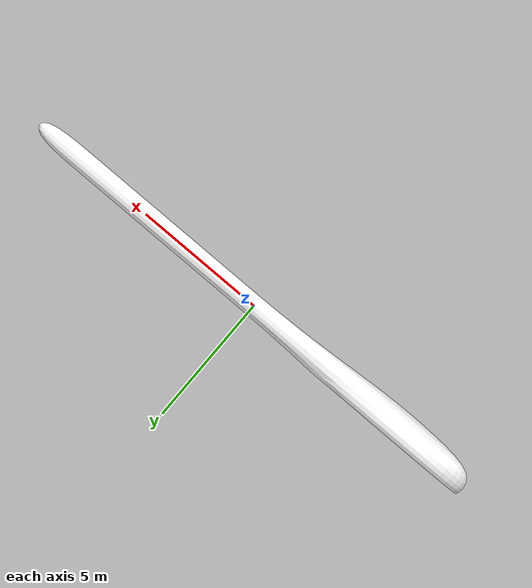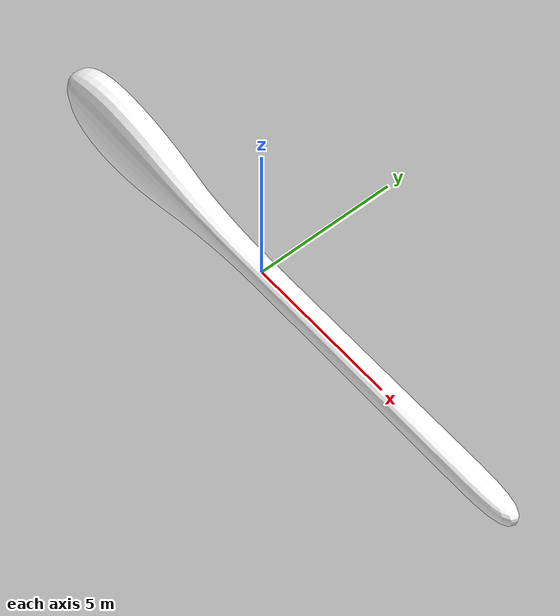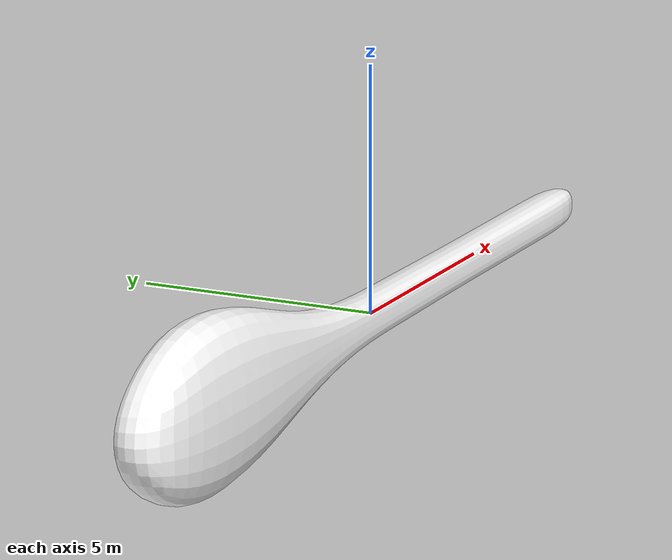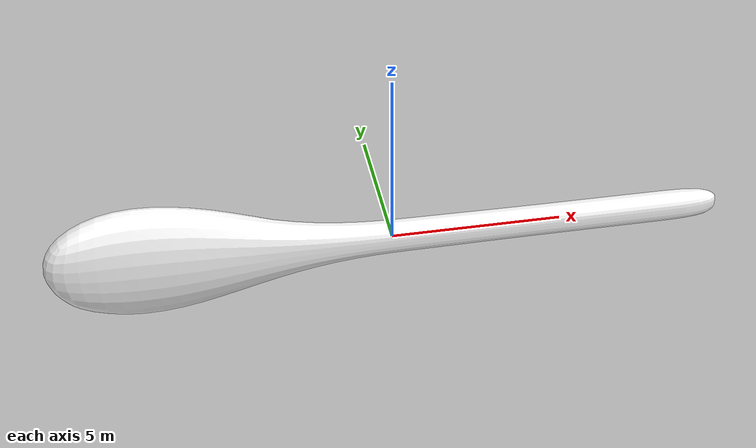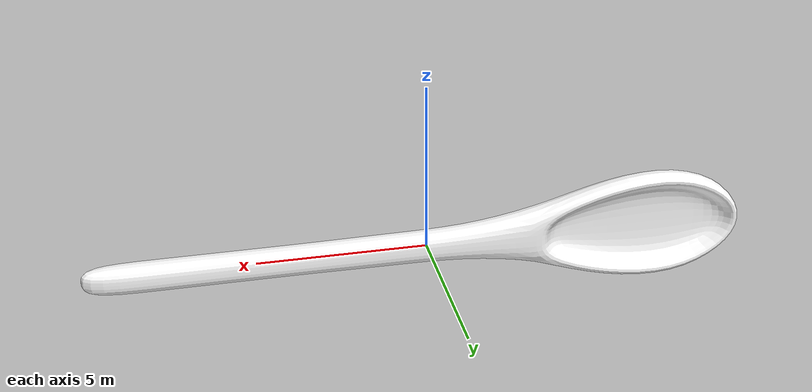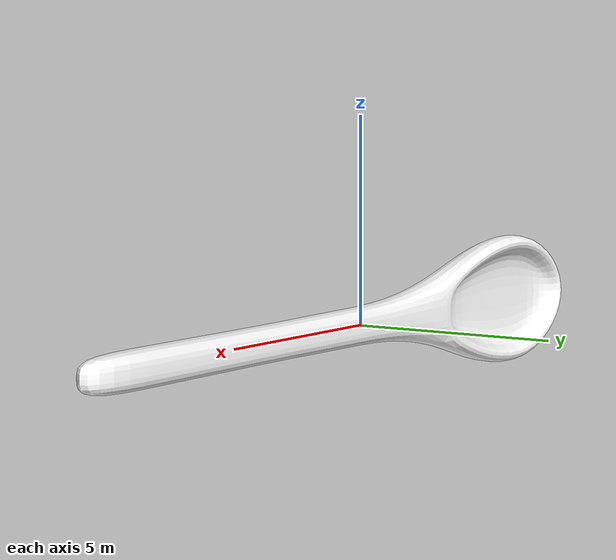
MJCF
<mujoco model="wooden-spoon">
  <default>
    <default class="visual">
      <geom group="2" type="mesh" contype="0" conaffinity="0"/>
    </default>
    <default class="collision">
      <geom group="3" type="mesh"/>
    </default>
  </default>
  <asset>
    <material name="Material.wooden-spoon" specular="0.5" shininess="0.5" rgba="1.0 1.0 1.0 1.0"/>
    <mesh file="wooden-spoon.obj"/>
    <mesh file="wooden-spoon_collision_0.obj"/>
    <mesh file="wooden-spoon_collision_1.obj"/>
  </asset>
  <worldbody>
    <body name="wooden-spoon">
      <geom material="Material.wooden-spoon" mesh="wooden-spoon" class="visual"/>
      <geom mesh="wooden-spoon_collision_0" rgba="0.8465304946869062 0.07697571704585238 0.580030569824619 1" class="collision"/>
      <geom mesh="wooden-spoon_collision_1" rgba="0.5580519493691197 0.26179958527465585 0.8014001416113136 1" class="collision"/>
    </body>
  </worldbody>
</mujoco>
